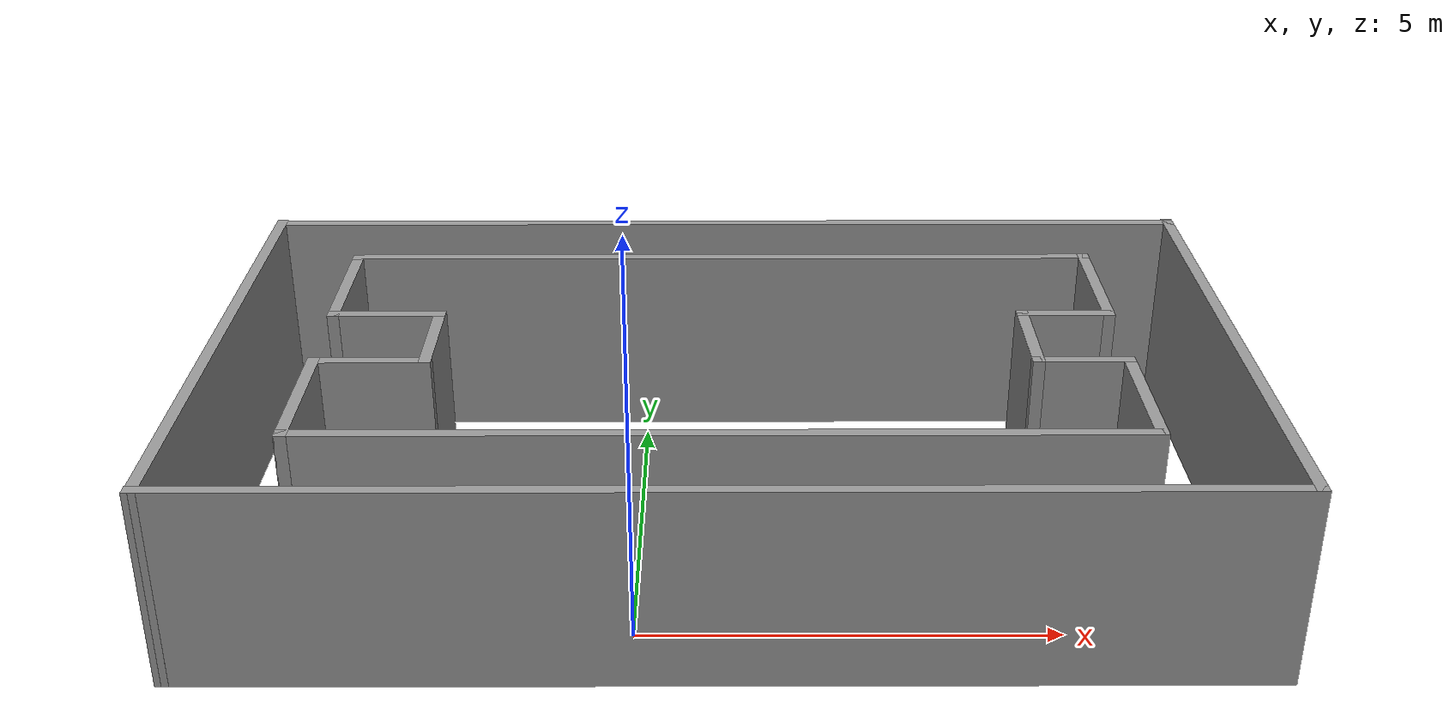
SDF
<?xml version='1.0'?>
<sdf version='1.7'>
  <model name='room3'>
    <pose>1.06929 2.87625 0 0 -0 0</pose>
    <link name='Wall_10'>
      <collision name='Wall_10_Collision'>
        <geometry>
          <box>
            <size>1.5 0.15 2.5</size>
          </box>
        </geometry>
        <pose>0 0 1.25 0 -0 0</pose>
      </collision>
      <visual name='Wall_10_Visual'>
        <pose>0 0 1.25 0 -0 0</pose>
        <geometry>
          <box>
            <size>1.5 0.15 2.5</size>
          </box>
        </geometry>
        <material>
          <script>
            <uri>file://media/materials/scripts/gazebo.material</uri>
            <name>Gazebo/Grey</name>
          </script>
          <ambient>1 1 1 1</ambient>
        </material>
        <meta>
          <layer>0</layer>
        </meta>
      </visual>
      <pose>3.77849 -0.004477 0 0 -0 1.5708</pose>
    </link>
    <link name='Wall_11'>
      <collision name='Wall_11_Collision'>
        <geometry>
          <box>
            <size>1.25 0.15 2.5</size>
          </box>
        </geometry>
        <pose>0 0 1.25 0 -0 0</pose>
      </collision>
      <visual name='Wall_11_Visual'>
        <pose>0 0 1.25 0 -0 0</pose>
        <geometry>
          <box>
            <size>1.25 0.15 2.5</size>
          </box>
        </geometry>
        <material>
          <script>
            <uri>file://media/materials/scripts/gazebo.material</uri>
            <name>Gazebo/Grey</name>
          </script>
          <ambient>1 1 1 1</ambient>
        </material>
        <meta>
          <layer>0</layer>
        </meta>
      </visual>
      <pose>4.32849 0.670523 0 0 -0 0</pose>
    </link>
    <link name='Wall_12'>
      <collision name='Wall_12_Collision'>
        <geometry>
          <box>
            <size>2 0.15 2.5</size>
          </box>
        </geometry>
        <pose>0 0 1.25 0 -0 0</pose>
      </collision>
      <visual name='Wall_12_Visual'>
        <pose>0 0 1.25 0 -0 0</pose>
        <geometry>
          <box>
            <size>2 0.15 2.5</size>
          </box>
        </geometry>
        <material>
          <script>
            <uri>file://media/materials/scripts/gazebo.material</uri>
            <name>Gazebo/Grey</name>
          </script>
          <ambient>1 1 1 1</ambient>
        </material>
        <meta>
          <layer>0</layer>
        </meta>
      </visual>
      <pose>4.87849 1.59552 0 0 -0 1.5708</pose>
    </link>
    <link name='Wall_13'>
      <collision name='Wall_13_Collision'>
        <geometry>
          <box>
            <size>10 0.15 2.5</size>
          </box>
        </geometry>
        <pose>0 0 1.25 0 -0 0</pose>
      </collision>
      <visual name='Wall_13_Visual'>
        <pose>0 0 1.25 0 -0 0</pose>
        <geometry>
          <box>
            <size>10 0.15 2.5</size>
          </box>
        </geometry>
        <material>
          <script>
            <uri>file://media/materials/scripts/gazebo.material</uri>
            <name>Gazebo/Grey</name>
          </script>
          <ambient>1 1 1 1</ambient>
        </material>
        <meta>
          <layer>0</layer>
        </meta>
      </visual>
      <pose>-0.046514 2.52052 0 0 -0 3.14159</pose>
    </link>
    <link name='Wall_14'>
      <collision name='Wall_14_Collision'>
        <geometry>
          <box>
            <size>2 0.15 2.5</size>
          </box>
        </geometry>
        <pose>0 0 1.25 0 -0 0</pose>
      </collision>
      <visual name='Wall_14_Visual'>
        <pose>0 0 1.25 0 -0 0</pose>
        <geometry>
          <box>
            <size>2 0.15 2.5</size>
          </box>
        </geometry>
        <material>
          <script>
            <uri>file://media/materials/scripts/gazebo.material</uri>
            <name>Gazebo/Grey</name>
          </script>
          <ambient>1 1 1 1</ambient>
        </material>
        <meta>
          <layer>0</layer>
        </meta>
      </visual>
      <pose>-4.97151 1.59552 0 0 -0 -1.5708</pose>
    </link>
    <link name='Wall_15'>
      <collision name='Wall_15_Collision'>
        <geometry>
          <box>
            <size>1.5 0.15 2.5</size>
          </box>
        </geometry>
        <pose>0 0 1.25 0 -0 0</pose>
      </collision>
      <visual name='Wall_15_Visual'>
        <pose>0 0 1.25 0 -0 0</pose>
        <geometry>
          <box>
            <size>1.5 0.15 2.5</size>
          </box>
        </geometry>
        <material>
          <script>
            <uri>file://media/materials/scripts/gazebo.material</uri>
            <name>Gazebo/Grey</name>
          </script>
          <ambient>1 1 1 1</ambient>
        </material>
        <meta>
          <layer>0</layer>
        </meta>
      </visual>
      <pose>-4.29651 0.670523 0 0 -0 0</pose>
    </link>
    <link name='Wall_16'>
      <collision name='Wall_16_Collision'>
        <geometry>
          <box>
            <size>1.5 0.15 2.5</size>
          </box>
        </geometry>
        <pose>0 0 1.25 0 -0 0</pose>
      </collision>
      <visual name='Wall_16_Visual'>
        <pose>0 0 1.25 0 -0 0</pose>
        <geometry>
          <box>
            <size>1.5 0.15 2.5</size>
          </box>
        </geometry>
        <material>
          <script>
            <uri>file://media/materials/scripts/gazebo.material</uri>
            <name>Gazebo/Grey</name>
          </script>
          <ambient>1 1 1 1</ambient>
        </material>
        <meta>
          <layer>0</layer>
        </meta>
      </visual>
      <pose>-3.62151 -0.004477 0 0 -0 -1.5708</pose>
    </link>
    <link name='Wall_17'>
      <collision name='Wall_17_Collision'>
        <geometry>
          <box>
            <size>1.5 0.15 2.5</size>
          </box>
        </geometry>
        <pose>0 0 1.25 0 -0 0</pose>
      </collision>
      <visual name='Wall_17_Visual'>
        <pose>0 0 1.25 0 -0 0</pose>
        <geometry>
          <box>
            <size>1.5 0.15 2.5</size>
          </box>
        </geometry>
        <material>
          <script>
            <uri>file://media/materials/scripts/gazebo.material</uri>
            <name>Gazebo/Grey</name>
          </script>
          <ambient>1 1 1 1</ambient>
        </material>
        <meta>
          <layer>0</layer>
        </meta>
      </visual>
      <pose>-4.29651 -0.679477 0 0 -0 3.14159</pose>
    </link>
    <link name='Wall_18'>
      <collision name='Wall_18_Collision'>
        <geometry>
          <box>
            <size>2 0.15 2.5</size>
          </box>
        </geometry>
        <pose>0 0 1.25 0 -0 0</pose>
      </collision>
      <visual name='Wall_18_Visual'>
        <pose>0 0 1.25 0 -0 0</pose>
        <geometry>
          <box>
            <size>2 0.15 2.5</size>
          </box>
        </geometry>
        <material>
          <script>
            <uri>file://media/materials/scripts/gazebo.material</uri>
            <name>Gazebo/Grey</name>
          </script>
          <ambient>1 1 1 1</ambient>
        </material>
        <meta>
          <layer>0</layer>
        </meta>
      </visual>
      <pose>-4.97151 -1.60448 0 0 -0 -1.5708</pose>
    </link>
    <link name='Wall_2'>
      <collision name='Wall_2_Collision'>
        <geometry>
          <box>
            <size>7.72392 0.15 2.5</size>
          </box>
        </geometry>
        <pose>0 0 1.25 0 -0 0</pose>
      </collision>
      <visual name='Wall_2_Visual'>
        <pose>0 0 1.25 0 -0 0</pose>
        <geometry>
          <box>
            <size>7.72392 0.15 2.5</size>
          </box>
        </geometry>
        <material>
          <script>
            <uri>file://media/materials/scripts/gazebo.material</uri>
            <name>Gazebo/Grey</name>
          </script>
          <ambient>1 1 1 1</ambient>
        </material>
        <meta>
          <layer>0</layer>
        </meta>
      </visual>
      <pose>-6.28529 -0 0 0 -0 1.5695</pose>
    </link>
    <link name='Wall_3'>
      <collision name='Wall_3_Collision'>
        <geometry>
          <box>
            <size>12.7304 0.15 2.5</size>
          </box>
        </geometry>
        <pose>0 0 1.25 0 -0 0</pose>
      </collision>
      <visual name='Wall_3_Visual'>
        <pose>0 0 1.25 0 -0 0</pose>
        <geometry>
          <box>
            <size>12.7304 0.15 2.5</size>
          </box>
        </geometry>
        <material>
          <script>
            <uri>file://media/materials/scripts/gazebo.material</uri>
            <name>Gazebo/Grey</name>
          </script>
          <ambient>1 1 1 1</ambient>
        </material>
        <meta>
          <layer>0</layer>
        </meta>
      </visual>
      <pose>0.009807 3.76087 0 0 -0 0</pose>
    </link>
    <link name='Wall_4'>
      <collision name='Wall_4_Collision'>
        <geometry>
          <box>
            <size>7.72391 0.15 2.5</size>
          </box>
        </geometry>
        <pose>0 0 1.25 0 -0 0</pose>
      </collision>
      <visual name='Wall_4_Visual'>
        <pose>0 0 1.25 0 -0 0</pose>
        <geometry>
          <box>
            <size>7.72391 0.15 2.5</size>
          </box>
        </geometry>
        <material>
          <script>
            <uri>file://media/materials/scripts/gazebo.material</uri>
            <name>Gazebo/Grey</name>
          </script>
          <ambient>1 1 1 1</ambient>
        </material>
        <meta>
          <layer>0</layer>
        </meta>
      </visual>
      <pose>6.3 -0 0 0 -0 -1.5708</pose>
    </link>
    <link name='Wall_5'>
      <collision name='Wall_5_Collision'>
        <geometry>
          <box>
            <size>12.75 0.15 2.5</size>
          </box>
        </geometry>
        <pose>0 0 1.25 0 -0 0</pose>
      </collision>
      <visual name='Wall_5_Visual'>
        <pose>0 0 1.25 0 -0 0</pose>
        <geometry>
          <box>
            <size>12.75 0.15 2.5</size>
          </box>
        </geometry>
        <material>
          <script>
            <uri>file://media/materials/scripts/gazebo.material</uri>
            <name>Gazebo/Grey</name>
          </script>
          <ambient>1 1 1 1</ambient>
        </material>
        <meta>
          <layer>0</layer>
        </meta>
      </visual>
      <pose>-0 -3.78696 0 0 -0 3.14159</pose>
    </link>
    <link name='Wall_7'>
      <collision name='Wall_7_Collision'>
        <geometry>
          <box>
            <size>10 0.15 2.5</size>
          </box>
        </geometry>
        <pose>0 0 1.25 0 -0 0</pose>
      </collision>
      <visual name='Wall_7_Visual'>
        <pose>0 0 1.25 0 -0 0</pose>
        <geometry>
          <box>
            <size>10 0.15 2.5</size>
          </box>
        </geometry>
        <material>
          <script>
            <uri>file://media/materials/scripts/gazebo.material</uri>
            <name>Gazebo/Grey</name>
          </script>
          <ambient>1 1 1 1</ambient>
        </material>
        <meta>
          <layer>0</layer>
        </meta>
      </visual>
      <pose>-0.046514 -2.52948 0 0 -0 0</pose>
    </link>
    <link name='Wall_8'>
      <collision name='Wall_8_Collision'>
        <geometry>
          <box>
            <size>2 0.15 2.5</size>
          </box>
        </geometry>
        <pose>0 0 1.25 0 -0 0</pose>
      </collision>
      <visual name='Wall_8_Visual'>
        <pose>0 0 1.25 0 -0 0</pose>
        <geometry>
          <box>
            <size>2 0.15 2.5</size>
          </box>
        </geometry>
        <material>
          <script>
            <uri>file://media/materials/scripts/gazebo.material</uri>
            <name>Gazebo/Grey</name>
          </script>
          <ambient>1 1 1 1</ambient>
        </material>
        <meta>
          <layer>0</layer>
        </meta>
      </visual>
      <pose>4.87849 -1.60448 0 0 -0 1.5708</pose>
    </link>
    <link name='Wall_9'>
      <collision name='Wall_9_Collision'>
        <geometry>
          <box>
            <size>1.25 0.15 2.5</size>
          </box>
        </geometry>
        <pose>0 0 1.25 0 -0 0</pose>
      </collision>
      <visual name='Wall_9_Visual'>
        <pose>0 0 1.25 0 -0 0</pose>
        <geometry>
          <box>
            <size>1.25 0.15 2.5</size>
          </box>
        </geometry>
        <material>
          <script>
            <uri>file://media/materials/scripts/gazebo.material</uri>
            <name>Gazebo/Grey</name>
          </script>
          <ambient>1 1 1 1</ambient>
        </material>
        <meta>
          <layer>0</layer>
        </meta>
      </visual>
      <pose>4.32849 -0.679477 0 0 -0 3.14159</pose>
    </link>
    <static>1</static>
  </model>
</sdf>
